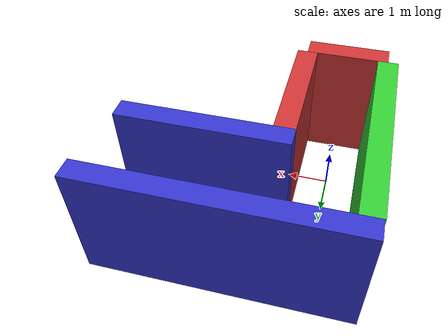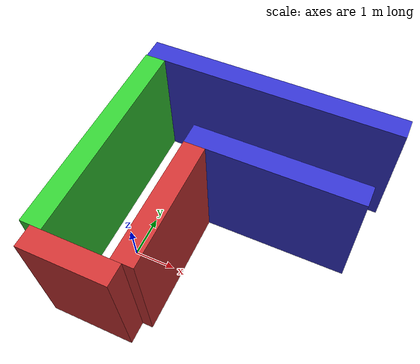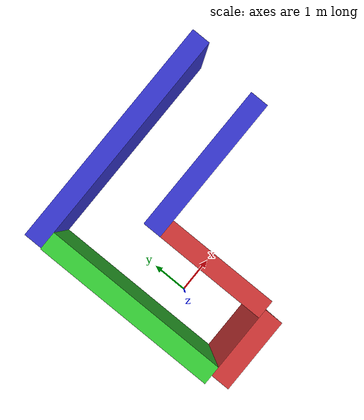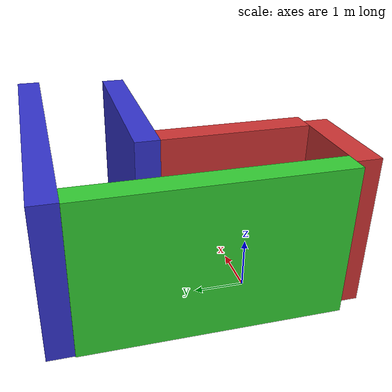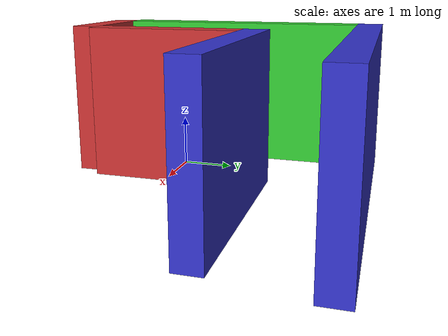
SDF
<sdf version="1.8">
 <world name="simple_trees">
  <plugin name="ignition::gazebo::systems::Physics" filename="ignition-gazebo-physics-system"/>
  <plugin name="ignition::gazebo::systems::UserCommands" filename="ignition-gazebo-user-commands-system"/>
  <plugin name="ignition::gazebo::systems::SceneBroadcaster" filename="ignition-gazebo-scene-broadcaster-system"/>
  <plugin name="ignition::gazebo::systems::Contact" filename="ignition-gazebo-contact-system"/>
  <light name="sun" type="directional">
   <pose>0 0 10 0 -0 0</pose>
   <diffuse>0.8 0.8 0.8 1</diffuse>
   <specular>0.2 0.2 0.2 1</specular>
   <attenuation>
    <range>1000</range>
    <constant>0.9</constant>
    <linear>0.01</linear>
    <quadratic>0.001</quadratic>
   </attenuation>
   <direction>-0.5 0.1 -0.9</direction>
  </light>
  <gravity>0 0 -9.81</gravity>
  <magnetic_field>6e-06 2.3e-05 -4.2e-05</magnetic_field>
  <atmosphere type="adiabatic"/>
  <physics name="default_physics" type="ignored">
   <max_step_size>0.01</max_step_size>
   <real_time_factor>1</real_time_factor>
   <real_time_update_rate>100</real_time_update_rate>
  </physics>
  <scene><ambient>1.0 1.0 1.0</ambient><background>0.8 0.8 0.8</background><shadows>1</shadows></scene>
  <spherical_coordinates>
   <latitude_deg>0.0</latitude_deg>
   <longitude_deg>0.0</longitude_deg>
   <elevation>10.0</elevation>
   <heading_deg>0</heading_deg>
   <surface_model>EARTH_WGS84</surface_model>
  </spherical_coordinates>
  <model name="Wall 0">
   <pose>0 -1.75 1.5 0 0 0</pose>
   <static>true</static>
   <link name="link">
    <collision name="collision"><geometry><box><size>2 0.5 3</size></box></geometry></collision>
    <visual name="visual">
     <geometry><box><size>2 0.5 3</size></box></geometry>
     <material><ambient>0.8 0.2 0.2 1</ambient><diffuse>0.8 0.2 0.2 1</diffuse></material>
    </visual>
   </link>
  </model>
  <model name="Wall 1.A">
   <pose>1 0 1.5 0 0 0</pose>
   <static>true</static>
   <link name="link">
    <collision name="collision"><geometry><box><size>0.5 3 3</size></box></geometry></collision>
    <visual name="visual">
     <geometry><box><size>0.5 3 3</size></box></geometry>
     <material><ambient>0.8 0.2 0.2 1</ambient><diffuse>0.8 0.2 0.2 1</diffuse></material>
    </visual>
   </link>
  </model>
  <model name="Wall 1.B">
   <pose>-1 1 1.5 0 0 0</pose>
   <static>true</static>
   <link name="link">
    <collision name="collision"><geometry><box><size>0.5 5 3</size></box></geometry></collision>
    <visual name="visual">
     <geometry><box><size>0.5 5 3</size></box></geometry>
     <material><ambient>0.2 0.8 0.2 1</ambient><diffuse>0.2 0.8 0.2 1</diffuse></material>
    </visual>
   </link>
  </model>
  <model name="Wall 2.A">
   <pose>2.75 1.75 1.5 0 0 0</pose>
   <static>true</static>
   <link name="link">
    <collision name="collision"><geometry><box><size>4 0.5 3</size></box></geometry></collision>
    <visual name="visual">
     <geometry><box><size>4 0.5 3</size></box></geometry>
     <material><ambient>0.2 0.2 0.8 1</ambient><diffuse>0.2 0.2 0.8 1</diffuse></material>
    </visual>
   </link>
  </model>
  <model name="Wall 2.B">
   <pose>1.9 3.75 1.5 0 0 0</pose>
   <static>true</static>
   <link name="link">
    <collision name="collision"><geometry><box><size>6.25 0.5 3</size></box></geometry></collision>
    <visual name="visual">
     <geometry><box><size>6.25 0.5 3</size></box></geometry>
     <material><ambient>0.2 0.2 0.8 1</ambient><diffuse>0.2 0.2 0.8 1</diffuse></material>
    </visual>
   </link>
  </model>
 </world>
</sdf>
